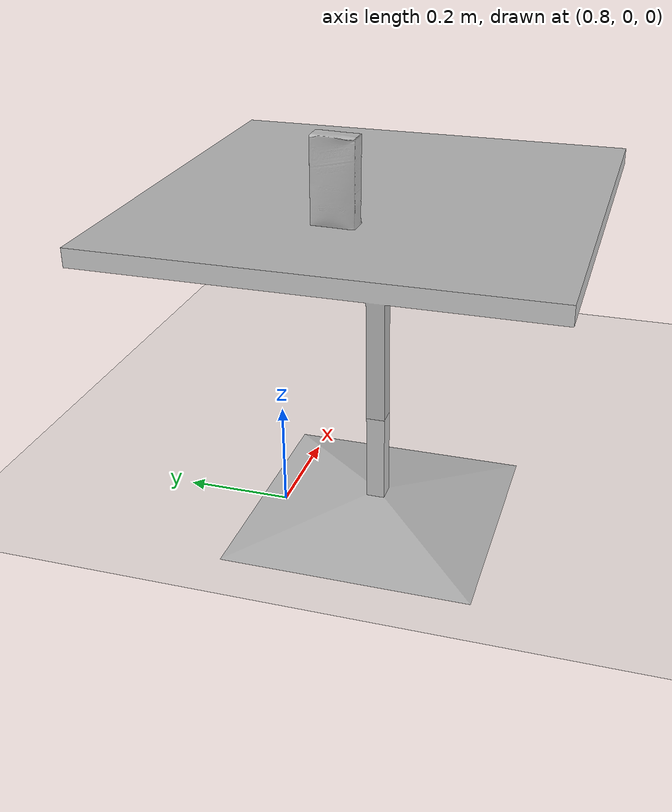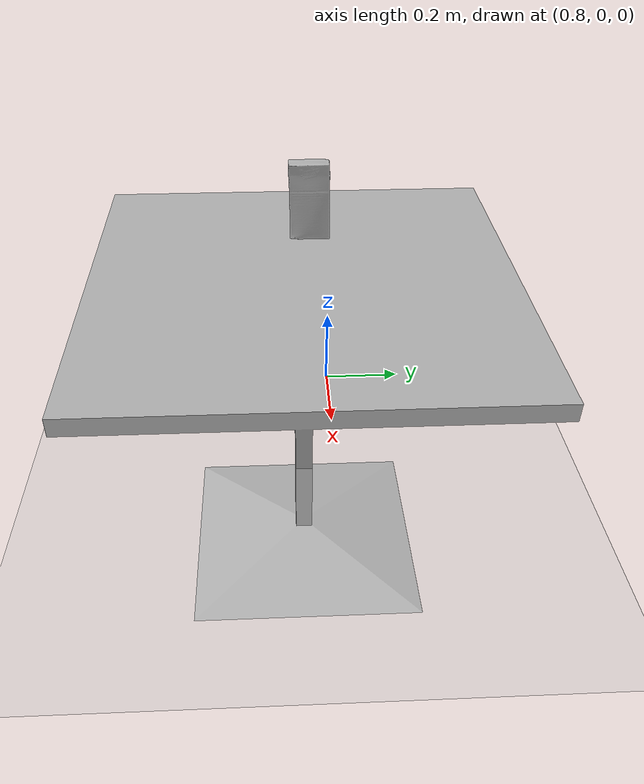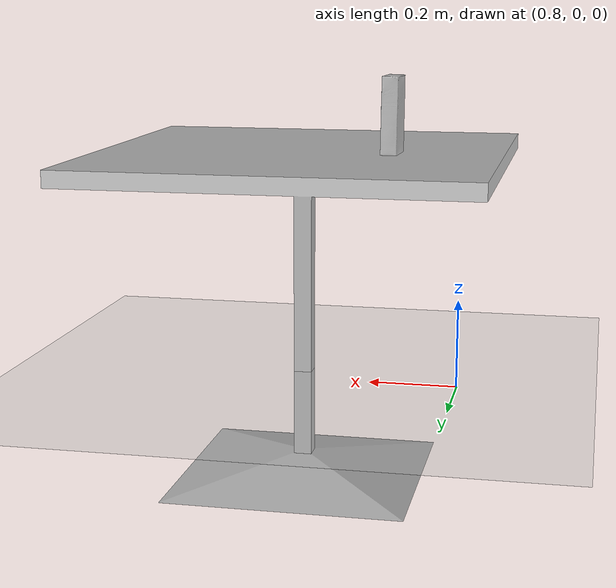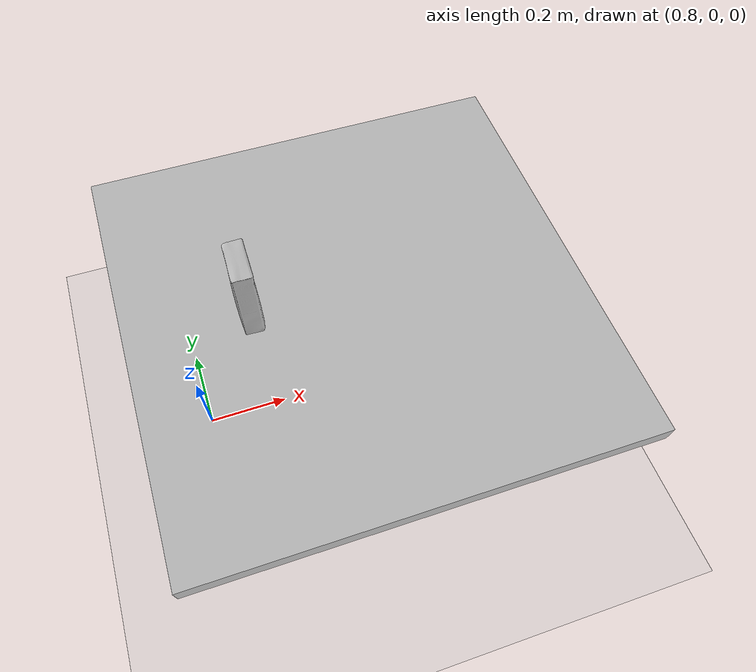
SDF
<sdf version="1.7">
 <world name="default">
  <plugin name="xbot2_clock" filename="libxbot2_gz_clock.so"/>
  <gravity>0 0 -9.81</gravity>
  <model name="ground_plane">
   <static>1</static>
   <link name="link">
    <collision name="collision">
     <geometry><plane><normal>0 0 1</normal><size>100 100</size></plane></geometry>
     <surface><friction><ode><mu>1</mu><mu2>1</mu2></ode></friction></surface>
    </collision>
    <visual name="visual">
     <cast_shadows>0</cast_shadows>
     <geometry><plane><normal>0 0 1</normal><size>100 100</size></plane></geometry>
     <material>
      <script><uri>file://media/materials/scripts/gazebo.material</uri><name>Gazebo/Grey</name></script>
     </material>
    </visual>
   </link>
  </model>
  <light name="sun" type="directional">
   <pose>0 0 10 0 -0 0</pose>
   <diffuse>0.8 0.8 0.8 1</diffuse>
   <specular>0.2 0.2 0.2 1</specular>
   <attenuation>
    <range>1000</range>
    <constant>0.9</constant>
    <linear>0.01</linear>
    <quadratic>0.001</quadratic>
   </attenuation>
   <direction>-0.5 0.1 -0.9</direction>
   <spot><inner_angle>0</inner_angle><outer_angle>0</outer_angle><falloff>0</falloff></spot>
  </light>
  <physics name="update_rate" type="ode">
   <real_time_update_rate>4000</real_time_update_rate>
   <max_step_size>0.00025</max_step_size>
   <max_contacts>5</max_contacts>
   <bullet>
    <solver><iters>100</iters><sor>1.55</sor><type>sequential_impulse</type></solver>
    <constraints>
     <contact_surface_layer>0.2</contact_surface_layer>
     <cfm>0.005</cfm>
     <erp>0.2</erp>
     <split_impulse>1</split_impulse>
     <split_impulse_penetration_threshold>-0.01</split_impulse_penetration_threshold>
    </constraints>
   </bullet>
   <ode>
    <solver>
     <iters>50</iters>
     <sor>1.2</sor>
     <type>quick</type>
     <use_dynamic_moi_rescaling>0</use_dynamic_moi_rescaling>
    </solver>
    <constraints>
     <contact_surface_layer>0.0002</contact_surface_layer>
     <contact_max_correcting_vel>500</contact_max_correcting_vel>
     <cfm>1e-06</cfm>
     <erp>0.3</erp>
    </constraints>
   </ode>
   <real_time_factor>1</real_time_factor>
  </physics>
  <magnetic_field>6e-06 2.3e-05 -4.2e-05</magnetic_field>
  <atmosphere type="adiabatic"/>
  <scene><ambient>0.4 0.4 0.4 1</ambient><background>0.7 0.7 0.7 1</background><shadows>1</shadows></scene>
  <spherical_coordinates>
   <surface_model>EARTH_WGS84</surface_model>
   <latitude_deg>0</latitude_deg>
   <longitude_deg>0</longitude_deg>
   <elevation>0</elevation>
   <heading_deg>0</heading_deg>
  </spherical_coordinates>
  <model name="cafe_table">
   <static>1</static>
   <link name="link">
    <collision name="surface">
     <pose>0 0 0.755 0 -0 0</pose>
     <geometry><box><size>0.913 0.913 0.04</size></box></geometry>
    </collision>
    <collision name="column">
     <pose>0 0 0.37 0 -0 0</pose>
     <geometry><box><size>0.042 0.042 0.74</size></box></geometry>
    </collision>
    <collision name="base">
     <pose>0 0 0.02 0 -0 0</pose>
     <geometry><box><size>0.56 0.56 0.04</size></box></geometry>
    </collision>
    <visual name="visual">
     <geometry><mesh><uri>model://cafe_table/meshes/cafe_table.dae</uri></mesh></geometry>
    </visual>
   </link>
   <pose>1.16913 -0.081929 -0.254989 0 -0 0</pose>
  </model>
  <model name="sugar_box">
   <link name="link">
    <inertial>
     <mass>0.514</mass>
     <inertia>
      <ixx>0.00165105</ixx>
      <ixy>0</ixy>
      <ixz>0</ixz>
      <iyy>0.00137362</iyy>
      <iyz>0</iyz>
      <izz>0.000401134</izz>
     </inertia>
     <pose>0 0 0.0875 0 -0 0</pose>
    </inertial>
    <collision name="collision">
     <pose>0 0 0.0875 0 -0 0</pose>
     <geometry><box><size>0.038 0.089 0.175</size></box></geometry>
     <surface>
      <friction><ode><mu>2</mu><mu2>2</mu2></ode></friction>
      <contact><ode><kp>100</kp><kd>1000</kd></ode></contact>
     </surface>
    </collision>
    <visual name="visual">
     <pose>0 0.015 0 0 0.05 0</pose>
     <geometry><mesh><uri>model://sugar_box/meshes/textured.dae</uri></mesh></geometry>
    </visual>
   </link>
   <pose>0.966819 -0.044529 0.517422 -1e-06 2.3e-05 -3.1298</pose>
  </model>
  <light name="user_point_light_0" type="point">
   <pose>0.491878 -0.128887 1 0 -0 0</pose>
   <diffuse>0.5 0.5 0.5 1</diffuse>
   <specular>0.1 0.1 0.1 1</specular>
   <attenuation>
    <range>20</range>
    <constant>0.5</constant>
    <linear>0.01</linear>
    <quadratic>0.001</quadratic>
   </attenuation>
   <cast_shadows>0</cast_shadows>
   <direction>0 0 -1</direction>
  </light>
 </world>
</sdf>
